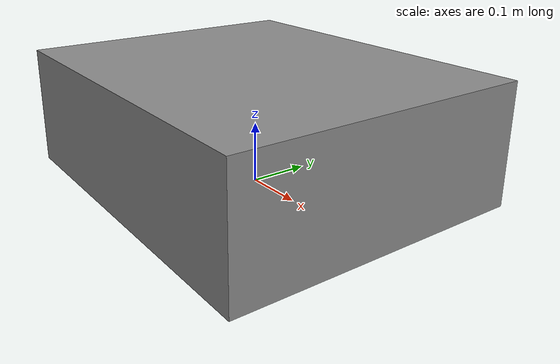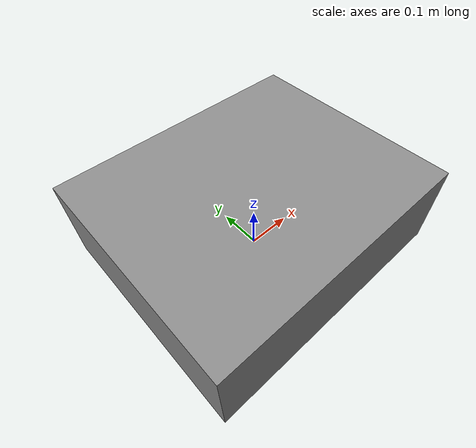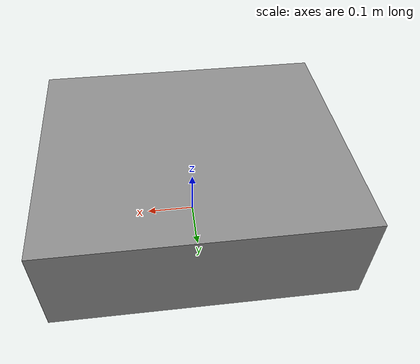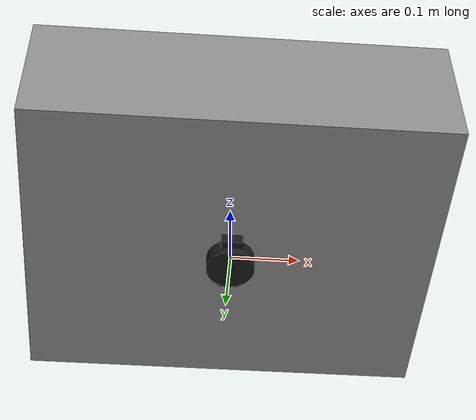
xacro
<?xml version="1.0"?>
<robot name="kelo" xmlns:xacro="http://www.ros.org/wiki/xacro">

  <xacro:arg name="base_frame" default="base_link"/>
  <xacro:arg name="laser_frame" default="laser"/>
  <xacro:arg name="camera_frame" default="camera_link"/>
  <xacro:arg name="camera_optical_frame" default="camera_depth_optical_frame"/>
  <xacro:arg name="camera_color_optical_frame" default="camera_color_optical_frame"/>
  <xacro:arg name="camera_color_y" default="0.0"/>
  <xacro:arg name="hedgehog_frame" default="hedgehog_link"/>

  <xacro:arg name="body_l" default="0.6"/>
  <xacro:arg name="body_w" default="0.5"/>
  <xacro:arg name="body_h" default="0.2"/>

  <xacro:arg name="laser_xyz" default="0 0 0"/>
  <xacro:arg name="laser_rpy" default="0 0 0"/>
  <xacro:arg name="camera_xyz" default="0 0 0"/>
  <xacro:arg name="camera_rpy" default="0 0 0"/>
  <xacro:arg name="hedgehog_xyz" default="0 0 0"/>
  <xacro:arg name="hedgehog_rpy" default="0 0 0"/>

  <material name="grey"><color rgba="0.55 0.55 0.55 1.0"/></material>
  <material name="black"><color rgba="0.1 0.1 0.1 1.0"/></material>
  <material name="orange"><color rgba="0.9 0.5 0.0 1.0"/></material>

  <link name="$(arg base_frame)">
    <visual>
      <origin xyz="0 0 0.1"/>
      <geometry><box size="$(arg body_l) $(arg body_w) $(arg body_h)"/></geometry>
      <material name="grey"/>
    </visual>
  </link>

  <link name="$(arg laser_frame)">
    <visual><geometry><cylinder radius="0.035" length="0.05"/></geometry><material name="black"/></visual>
  </link>
  <joint name="base_to_laser" type="fixed">
    <parent link="$(arg base_frame)"/>
    <child link="$(arg laser_frame)"/>
    <origin xyz="$(arg laser_xyz)" rpy="$(arg laser_rpy)"/>
  </joint>

  <link name="$(arg camera_frame)">
    <visual><geometry><box size="0.03 0.09 0.03"/></geometry><material name="black"/></visual>
  </link>
  <joint name="base_to_camera" type="fixed">
    <parent link="$(arg base_frame)"/>
    <child link="$(arg camera_frame)"/>
    <origin xyz="$(arg camera_xyz)" rpy="$(arg camera_rpy)"/>
  </joint>
  <link name="$(arg camera_optical_frame)"/>
  <joint name="camera_to_depth_optical" type="fixed">
    <parent link="$(arg camera_frame)"/>
    <child link="$(arg camera_optical_frame)"/>
    <origin xyz="0 0 0" rpy="-1.5707963267948966 0 -1.5707963267948966"/>
  </joint>
  <link name="$(arg camera_color_optical_frame)"/>
  <joint name="camera_to_color_optical" type="fixed">
    <parent link="$(arg camera_frame)"/>
    <child link="$(arg camera_color_optical_frame)"/>
    <origin xyz="0 $(arg camera_color_y) 0" rpy="-1.5707963267948966 0 -1.5707963267948966"/>
  </joint>

  <link name="$(arg hedgehog_frame)">
    <visual><geometry><cylinder radius="0.02" length="0.04"/></geometry><material name="orange"/></visual>
  </link>
  <joint name="base_to_hedgehog" type="fixed">
    <parent link="$(arg base_frame)"/>
    <child link="$(arg hedgehog_frame)"/>
    <origin xyz="$(arg hedgehog_xyz)" rpy="$(arg hedgehog_rpy)"/>
  </joint>

</robot>
